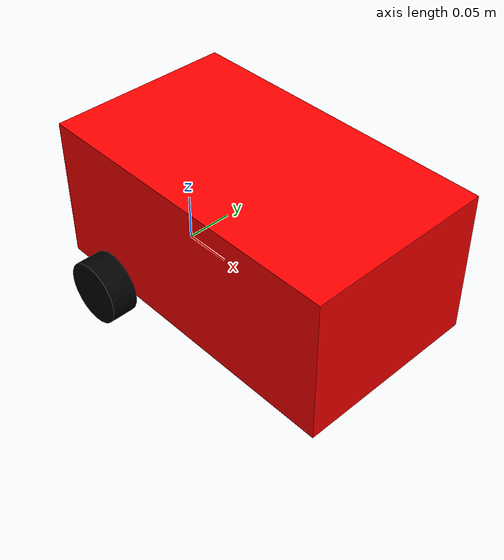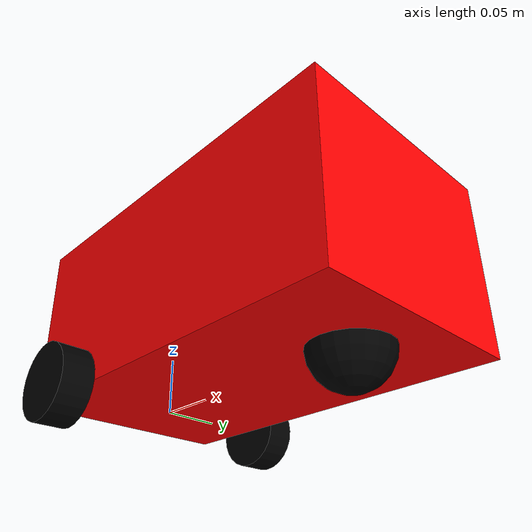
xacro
<?xml version="1.0"?>
<robot xmlns:xacro="http://www.ros.org/wiki/xacro"  >

    <xacro:include filename="inertial_macros.xacro"/>

    <material name="white">
            <color rgba="1 1 1 1" />
    </material>

    <material name="red">
        <color rgba="1 0 0 1" />
    </material>

    <material name="black">
        <color rgba="0 0 0 1" />
    </material>

    <material name="blue">
       <color rgba="0.2 0.2 1 1" />
    </material>

    <!-- BASE LINK -->

    <link name ="base_link">

    </link>

    <!-- BASE_FOOTPRINT LINK -->

    <joint name="base_footprint_joint" type="fixed">
        <parent link="base_link"/>
        <child link="base_footprint"/>
        <origin xyz="0 0 0" rpy="0 0 0"/>
    </joint>

    <link name="base_footprint">
    </link>

    <!-- CHASSIS LINK -->

    <joint name="chassis_joint" type="fixed">
        <parent link="base_link"/>
        <child link="chassis"/>
        <origin xyz="-0.065 0 0"/>
    </joint>

    <link name="chassis">
        <visual>
            <origin xyz="0.165 0 0.075"/>
            <geometry>
                <box size="0.33 0.19 0.15"/>
            </geometry>
            <material name="red"/>
        </visual>
        <collision>
            <origin xyz="0.165 0 0.075"/>
            <geometry>
                <box size="0.33 0.19 0.15"/>
            </geometry>
        </collision>
        <xacro:inertial_box mass="0.8" x="0.33" y="0.19" z="0.15">
            <origin xyz="0.165 0 0.075" rpy="0 0 0"/>
        </xacro:inertial_box>
    </link>

    <gazebo reference="chassis">
        <material>Gazebo/Red</material>
    </gazebo>

    <!-- LEFT WHEEL LINK -->

    <joint name ="left_wheel_joint" type ="continuous">
        <parent link = "base_link"/>
        <child link = "left_wheel"/>
        <origin xyz="0 0.11 0" rpy="-${pi/2} 0 0"/>
        <axis xyz="0 0 1"/>
    </joint>

    <link name="left_wheel">
        <visual>
            <geometry>
                <cylinder radius="0.0325" length="0.027"/>
            </geometry>
            <material name="black"/>
        </visual>
        <collision>
            <geometry>
                <sphere radius="0.0325"/>
            </geometry>
        </collision>
        <xacro:inertial_cylinder mass="0.2" length="0.027" radius="0.0325">
            <origin xyz="0 0 0" rpy="0 0 0"/>
        </xacro:inertial_cylinder>
    </link>

    <gazebo reference = "left_wheel">
        <material>Gazebo/Black</material>
    </gazebo>

        <!-- RIGHT WHEEL LINK -->

        <joint name ="right_wheel_joint" type ="continuous">
            <parent link = "base_link"/>
            <child link = "right_wheel"/>
            <origin xyz="0 -0.11 0" rpy="${pi/2} 0 0"/>
            <axis xyz="0 0 -1"/>
        </joint>

        <link name="right_wheel">
            <visual>
                <geometry>
                    <cylinder radius="0.0325" length="0.027"/>
                </geometry>
                <material name="black"/>
            </visual>
            <collision>
                <geometry>
                    <sphere radius="0.0325"/>
                </geometry>
            </collision>
            <xacro:inertial_cylinder mass="0.2" length="0.027" radius="0.0325">
            <origin xyz="0 0 0" rpy="0 0 0"/>
        </xacro:inertial_cylinder>
        </link>

        <gazebo reference = "right_wheel">
            <material>Gazebo/Black</material>
        </gazebo>

        <!-- CASTER WHEEL LINK -->

        <joint name="caster_wheel_joint" type="fixed">
            <parent link="chassis"/>
            <child link="caster_wheel"/>
            <origin xyz="0.27 0 0"/>
        </joint>

        <link name="caster_wheel">
            <visual>
                <geometry>
                    <sphere radius="0.0325"/>
                </geometry>
                <material name="black"/>
            </visual>
            <collision>
                <geometry>
                    <sphere radius="0.0325"/>
                </geometry>
            </collision>
            <xacro:inertial_sphere mass="0.3" radius="0.0325">
                <origin xyz="0 0 0" rpy="0 0 0"/>
            </xacro:inertial_sphere>
        </link>

        <gazebo reference = "caster_wheel">
            <material>Gazebo/Black</material>
            <mu1 value="0.005"/>
            <mu2 value="0.005"/>
        </gazebo>

</robot>
